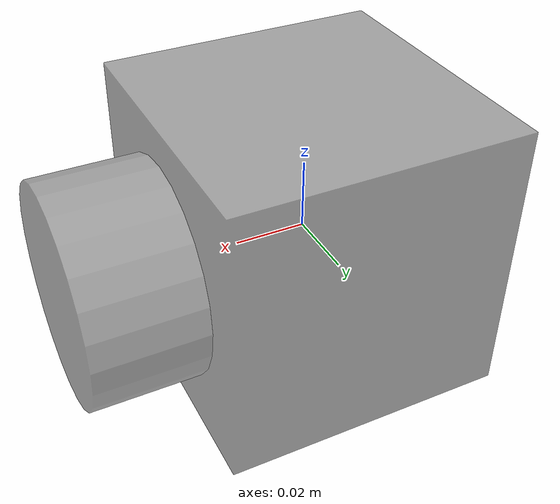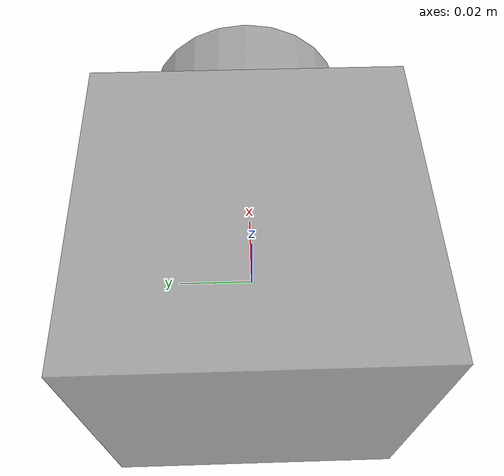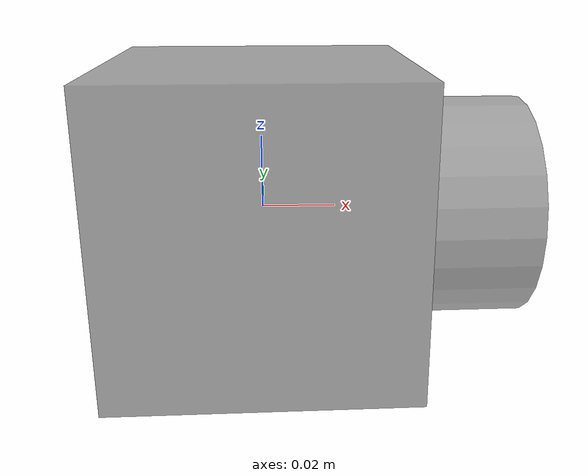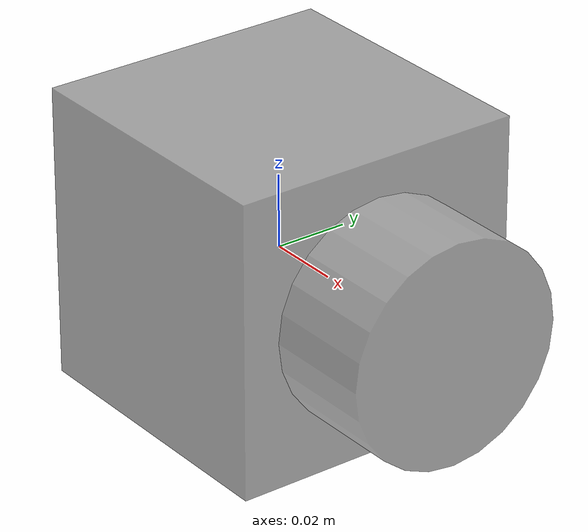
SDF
<?xml version="1.0" ?>
<sdf version="1.6">
    <model name='fisheye_camera'>
        <static>1</static>
        <link name='camera'>
            <pose frame=''>0 0 0 0 0 0</pose>
            <visual name='camera_body'>
                <geometry>
                    <box>
                        <size>0.08 0.08 0.08</size>
                    </box>
                </geometry>
                <transparency>0.3</transparency>
                <material>
                    <diffuse>0.5 0.5 0.5 1</diffuse>
                    <ambient>0 0 0 1</ambient>
                    <specular>1 1 1 1</specular>
                    <emissive>0 0.5 0 1</emissive>
                </material>
            </visual>
            <sensor type="camera" name="camera">
                <pose>0.0 0.0 0.0 0 0.0 0.0</pose>
                <!-- Set always_on only sensor, not on plugin -->
                <always_on>1</always_on>
                <!-- Set update_rate only sensor, not on plugin -->
                <update_rate>10</update_rate>
                <camera name="camera">
                    <horizontal_fov>2.51328</horizontal_fov>
                    <image>
                        <width>640</width>
                        <height>360</height>
                    </image>
                    <clip>
                        <near>0.1</near>
                        <far>100</far>
                    </clip>
                    <lens>
                        <type>custom</type>
                        <custom_function>
                            <c1>1.05</c1>
                            <c2>4</c2>
                            <f>1.0</f>
                            <fun>tan</fun>
                        </custom_function>
                        <scale_to_hfov>true</scale_to_hfov>
                        <cutoff_angle>3.1415</cutoff_angle>
                        <env_texture_size>512</env_texture_size>
                    </lens>
                </camera>

                <plugin name="camera" filename="libgazebo_ros_camera.so">
                    <ros>
                    <remapping>image_raw:=image_raw</remapping>
                    <remapping>camera_info:=camera_info</remapping>
                    </ros>
                    <frame_name>camera</frame_name>
                    <hack_baseline>0.07</hack_baseline>
                </plugin>
            </sensor>
        </link>
        <link name='lens'>
            <pose relative_to='camera'>0.055 0 0 0 1.57 0</pose>
            <visual name='camera_lens'>
                <geometry>
                    <cylinder>
                        <radius>0.03</radius>
                        <length>0.03</length>
                    </cylinder>
                </geometry>
                <transparency>0.3</transparency>
                <material>
                    <diffuse>0.5 0.5 0.5 1</diffuse>
                    <ambient>0 0 0 1</ambient>
                    <specular>1 1 1 1</specular>
                    <emissive>0 0.5 0 1</emissive>
                </material>
            </visual>
        </link>
    </model>
</sdf>
